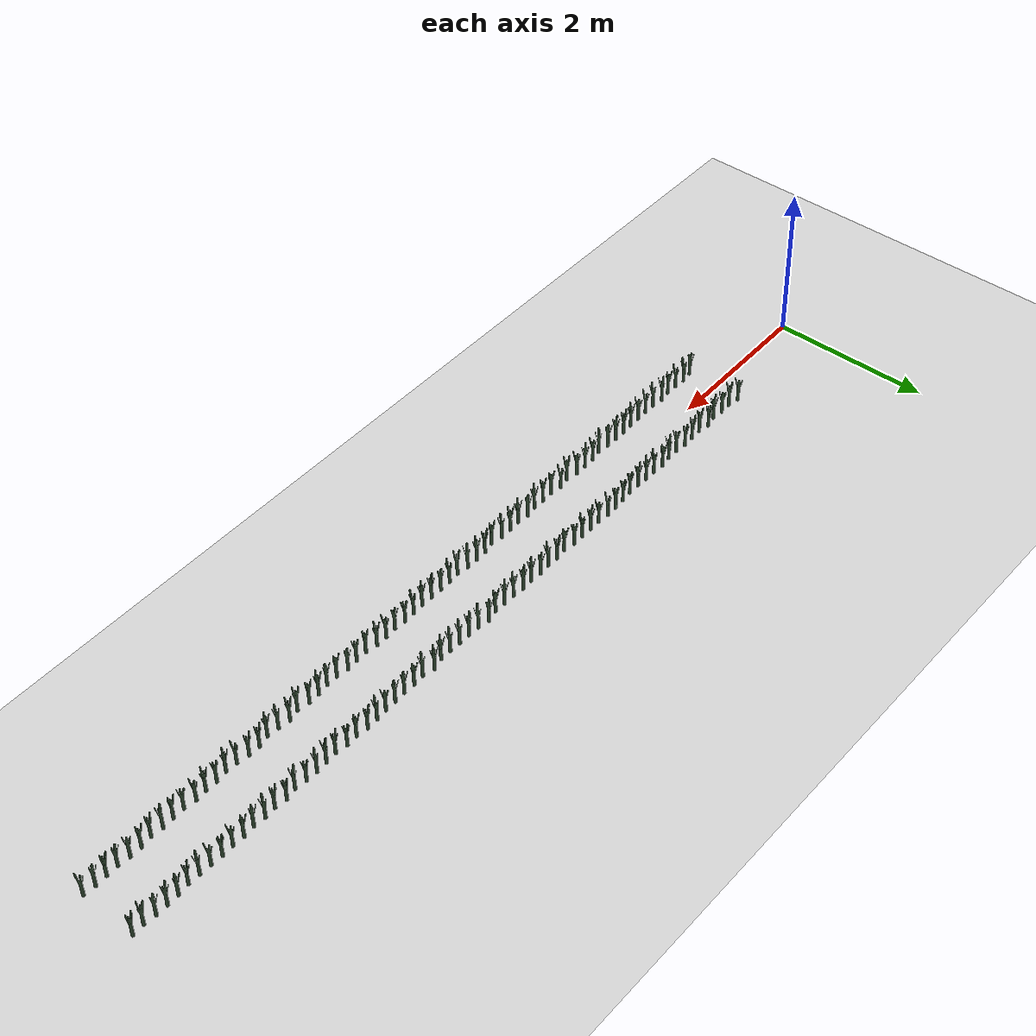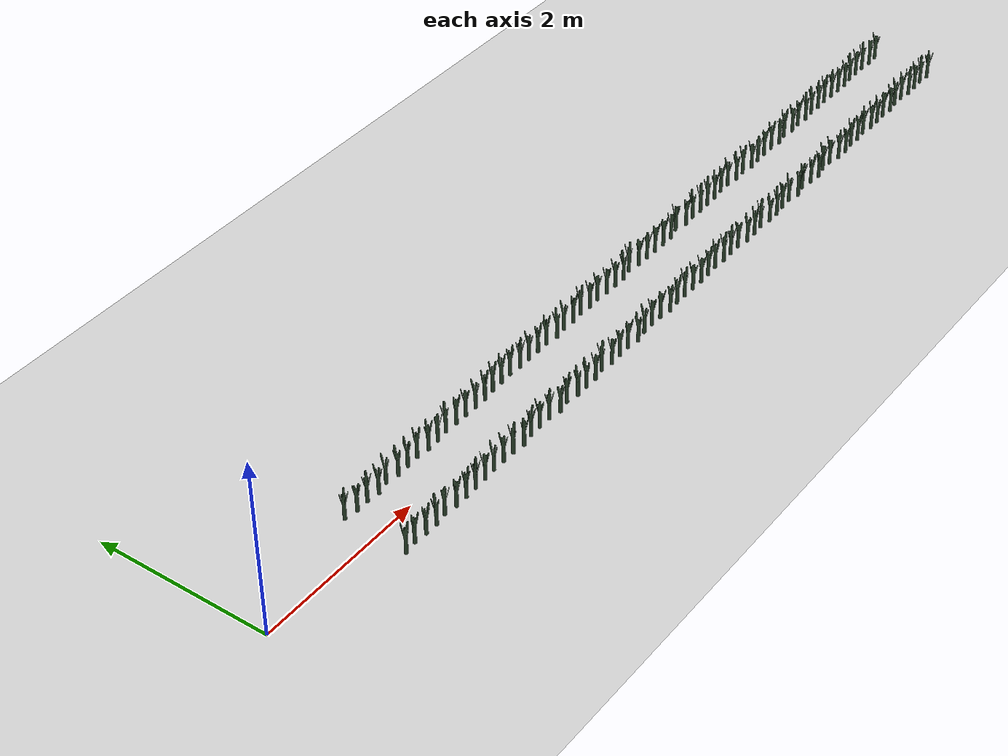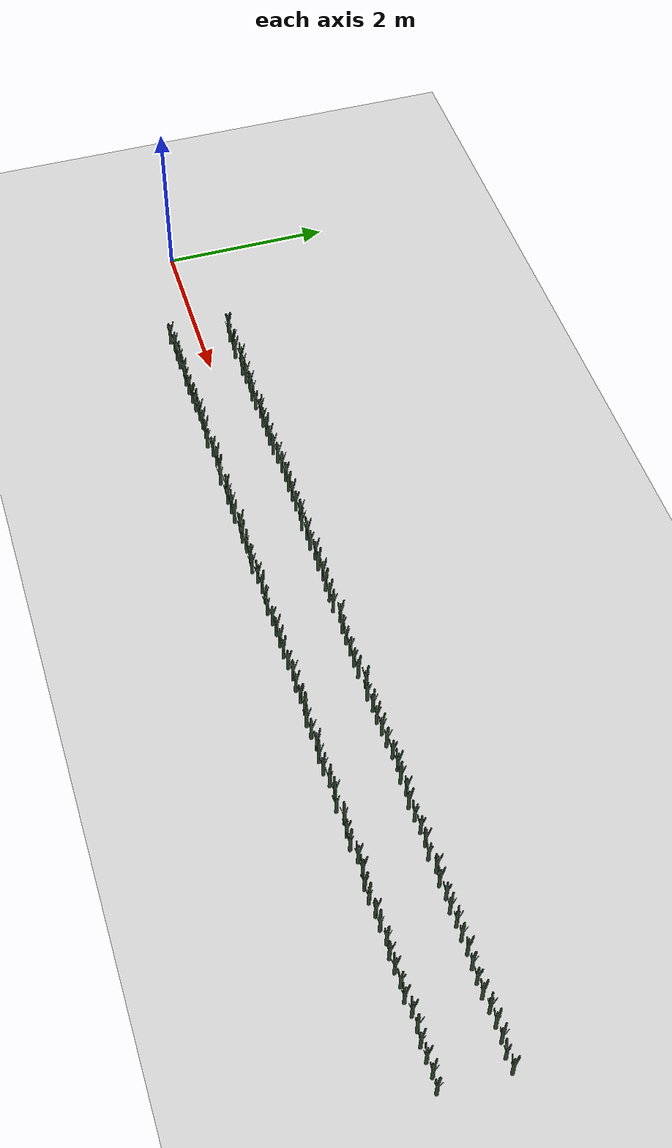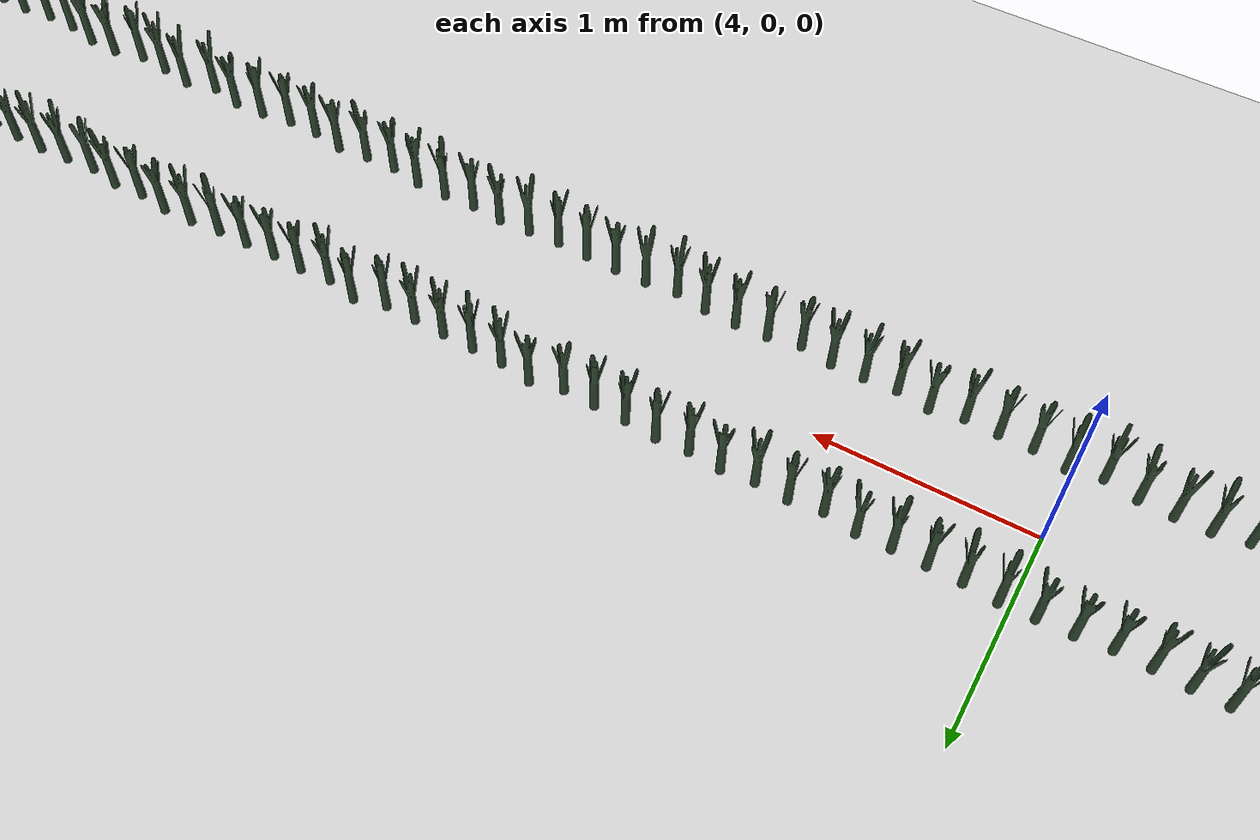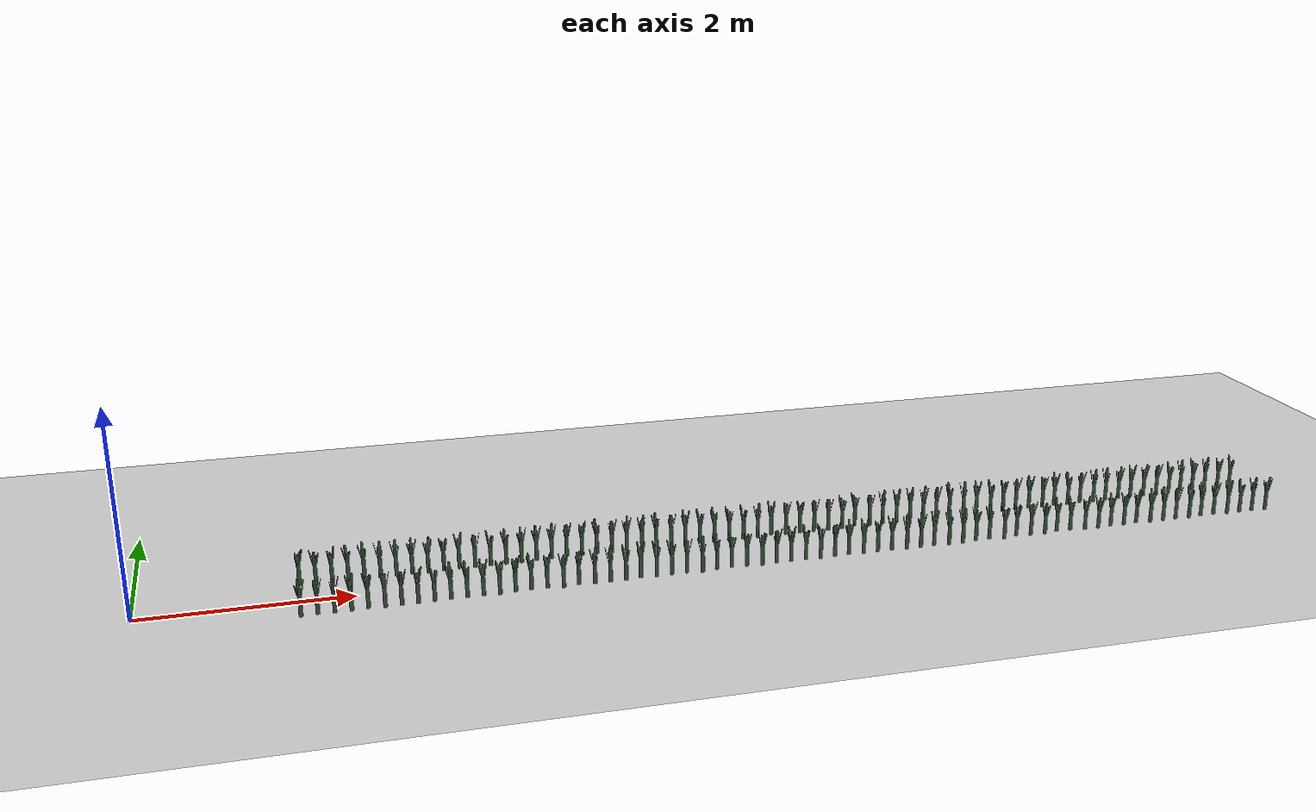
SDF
<sdf version="1.6">
 <world name="default">
  <light name="sun" type="directional">
   <pose>0 0 10 0 -0 0</pose>
   <diffuse>0.5 0.5 0.5 1</diffuse>
   <specular>0.1 0.1 0.1 1</specular>
   <attenuation>
    <range>1000</range>
    <constant>0.9</constant>
    <linear>0.01</linear>
    <quadratic>0.001</quadratic>
   </attenuation>
   <direction>0.9 0.5 -1</direction>
  </light>
  <scene><background>130 200 255 1</background><ambient>130 140 140 1</ambient></scene>
  <include><uri>model://dirt_plane</uri></include>
  <include><uri>model://Leek</uri><pose>1.500000 0.368732 0.15 0 0 168.585996</pose><static>0</static></include>
  <include><uri>model://Leek</uri><pose>1.650000 0.342659 0.15 0 0 -66.069428</pose><static>0</static></include>
  <include><uri>model://Leek</uri><pose>1.800000 0.347109 0.15 0 0 -26.015431</pose><static>0</static></include>
  <include>
   <uri>model://Leek</uri>
   <pose>1.950000 0.332051 0.15 0 0 -161.539831</pose>
   <static>0</static>
  </include>
  <include><uri>model://Leek</uri><pose>2.100000 0.367637 0.15 0 0 158.730709</pose><static>0</static></include>
  <include><uri>model://Leek</uri><pose>2.250000 0.341076 0.15 0 0 -80.318526</pose><static>0</static></include>
  <include><uri>model://Leek</uri><pose>2.400000 0.346675 0.15 0 0 -29.928428</pose><static>0</static></include>
  <include><uri>model://Leek</uri><pose>2.550000 0.354176 0.15 0 0 37.582143</pose><static>0</static></include>
  <include>
   <uri>model://Leek</uri>
   <pose>2.700000 0.334585 0.15 0 0 -138.736439</pose>
   <static>0</static>
  </include>
  <include><uri>model://Leek</uri><pose>2.850000 0.339926 0.15 0 0 -90.667920</pose><static>0</static></include>
  <include><uri>model://Leek</uri><pose>3.000000 0.359174 0.15 0 0 82.563122</pose><static>0</static></include>
  <include><uri>model://Leek</uri><pose>3.150000 0.347688 0.15 0 0 -20.809872</pose><static>0</static></include>
  <include><uri>model://Leek</uri><pose>3.300000 0.348861 0.15 0 0 -10.248396</pose><static>0</static></include>
  <include><uri>model://Leek</uri><pose>3.450000 0.342516 0.15 0 0 -67.358751</pose><static>0</static></include>
  <include><uri>model://Leek</uri><pose>3.600000 0.340911 0.15 0 0 -81.802633</pose><static>0</static></include>
  <include><uri>model://Leek</uri><pose>3.750000 0.356969 0.15 0 0 62.719596</pose><static>0</static></include>
  <include><uri>model://Leek</uri><pose>3.900000 0.362522 0.15 0 0 112.701816</pose><static>0</static></include>
  <include><uri>model://Leek</uri><pose>4.050000 0.368672 0.15 0 0 168.047725</pose><static>0</static></include>
  <include><uri>model://Leek</uri><pose>4.200000 0.355456 0.15 0 0 49.104787</pose><static>0</static></include>
  <include><uri>model://Leek</uri><pose>4.350000 0.355784 0.15 0 0 52.057637</pose><static>0</static></include>
  <include><uri>model://Leek</uri><pose>4.500000 0.353991 0.15 0 0 35.923098</pose><static>0</static></include>
  <include><uri>model://Leek</uri><pose>4.650000 0.360425 0.15 0 0 93.826454</pose><static>0</static></include>
  <include>
   <uri>model://Leek</uri>
   <pose>4.800000 0.334048 0.15 0 0 -143.564303</pose>
   <static>0</static>
  </include>
  <include><uri>model://Leek</uri><pose>4.950000 0.353668 0.15 0 0 33.007996</pose><static>0</static></include>
  <include><uri>model://Leek</uri><pose>5.100000 0.344189 0.15 0 0 -52.302265</pose><static>0</static></include>
  <include><uri>model://Leek</uri><pose>5.250000 0.359798 0.15 0 0 88.181889</pose><static>0</static></include>
  <include><uri>model://Leek</uri><pose>5.400000 0.346757 0.15 0 0 -29.183369</pose><static>0</static></include>
  <include><uri>model://Leek</uri><pose>5.550000 0.355800 0.15 0 0 52.197676</pose><static>0</static></include>
  <include><uri>model://Leek</uri><pose>5.700000 0.341191 0.15 0 0 -79.284622</pose><static>0</static></include>
  <include>
   <uri>model://Leek</uri>
   <pose>5.850000 0.338368 0.15 0 0 -104.688635</pose>
   <static>0</static>
  </include>
  <include>
   <uri>model://Leek</uri>
   <pose>6.000000 0.333366 0.15 0 0 -149.709837</pose>
   <static>0</static>
  </include>
  <include><uri>model://Leek</uri><pose>6.150000 0.368895 0.15 0 0 170.053997</pose><static>0</static></include>
  <include><uri>model://Leek</uri><pose>6.300000 0.344855 0.15 0 0 -46.306230</pose><static>0</static></include>
  <include><uri>model://Leek</uri><pose>6.450000 0.339930 0.15 0 0 -90.625760</pose><static>0</static></include>
  <include>
   <uri>model://Leek</uri>
   <pose>6.600000 0.337893 0.15 0 0 -108.963688</pose>
   <static>0</static>
  </include>
  <include>
   <uri>model://Leek</uri>
   <pose>6.750000 0.332303 0.15 0 0 -159.271482</pose>
   <static>0</static>
  </include>
  <include>
   <uri>model://Leek</uri>
   <pose>6.900000 0.330712 0.15 0 0 -173.594406</pose>
   <static>0</static>
  </include>
  <include><uri>model://Leek</uri><pose>7.050000 0.369811 0.15 0 0 178.295908</pose><static>0</static></include>
  <include>
   <uri>model://Leek</uri>
   <pose>7.200000 0.334401 0.15 0 0 -140.388918</pose>
   <static>0</static>
  </include>
  <include><uri>model://Leek</uri><pose>7.350000 0.347314 0.15 0 0 -24.178281</pose><static>0</static></include>
  <include><uri>model://Leek</uri><pose>7.500000 0.340993 0.15 0 0 -81.060630</pose><static>0</static></include>
  <include><uri>model://Leek</uri><pose>7.650000 0.346586 0.15 0 0 -30.727205</pose><static>0</static></include>
  <include><uri>model://Leek</uri><pose>7.800000 0.349224 0.15 0 0 -6.984782</pose><static>0</static></include>
  <include><uri>model://Leek</uri><pose>7.950000 0.363043 0.15 0 0 117.391396</pose><static>0</static></include>
  <include><uri>model://Leek</uri><pose>8.100000 0.368338 0.15 0 0 165.045390</pose><static>0</static></include>
  <include><uri>model://Leek</uri><pose>8.250000 0.347325 0.15 0 0 -24.072029</pose><static>0</static></include>
  <include><uri>model://Leek</uri><pose>8.400000 0.357679 0.15 0 0 69.110214</pose><static>0</static></include>
  <include>
   <uri>model://Leek</uri>
   <pose>8.550000 0.332758 0.15 0 0 -155.177595</pose>
   <static>0</static>
  </include>
  <include><uri>model://Leek</uri><pose>8.700000 0.344115 0.15 0 0 -52.968094</pose><static>0</static></include>
  <include><uri>model://Leek</uri><pose>8.850000 0.353958 0.15 0 0 35.619593</pose><static>0</static></include>
  <include><uri>model://Leek</uri><pose>9.000000 0.350680 0.15 0 0 6.118673</pose><static>0</static></include>
  <include>
   <uri>model://Leek</uri>
   <pose>9.150000 0.332965 0.15 0 0 -153.315601</pose>
   <static>0</static>
  </include>
  <include><uri>model://Leek</uri><pose>9.300000 0.361856 0.15 0 0 106.701346</pose><static>0</static></include>
  <include><uri>model://Leek</uri><pose>9.450000 0.339714 0.15 0 0 -92.578292</pose><static>0</static></include>
  <include><uri>model://Leek</uri><pose>9.600000 0.355358 0.15 0 0 48.221096</pose><static>0</static></include>
  <include><uri>model://Leek</uri><pose>9.750000 0.340316 0.15 0 0 -87.155188</pose><static>0</static></include>
  <include><uri>model://Leek</uri><pose>9.900000 0.353604 0.15 0 0 32.432056</pose><static>0</static></include>
  <include><uri>model://Leek</uri><pose>10.050000 0.349205 0.15 0 0 -7.151787</pose><static>0</static></include>
  <include><uri>model://Leek</uri><pose>10.200000 0.354903 0.15 0 0 44.130388</pose><static>0</static></include>
  <include>
   <uri>model://Leek</uri>
   <pose>10.350000 0.346392 0.15 0 0 -32.470946</pose>
   <static>0</static>
  </include>
  <include>
   <uri>model://Leek</uri>
   <pose>10.500000 0.340702 0.15 0 0 -83.678675</pose>
   <static>0</static>
  </include>
  <include>
   <uri>model://Leek</uri>
   <pose>10.650000 0.337647 0.15 0 0 -111.175731</pose>
   <static>0</static>
  </include>
  <include><uri>model://Leek</uri><pose>10.800000 0.354300 0.15 0 0 38.695641</pose><static>0</static></include>
  <include><uri>model://Leek</uri><pose>10.950000 0.358610 0.15 0 0 77.494287</pose><static>0</static></include>
  <include><uri>model://Leek</uri><pose>11.100000 0.357754 0.15 0 0 69.787347</pose><static>0</static></include>
  <include>
   <uri>model://Leek</uri>
   <pose>11.250000 0.342674 0.15 0 0 -65.935600</pose>
   <static>0</static>
  </include>
  <include><uri>model://Leek</uri><pose>11.400000 0.350197 0.15 0 0 1.774027</pose><static>0</static></include>
  <include>
   <uri>model://Leek</uri>
   <pose>1.479400 -0.367439 0.15 0 0 -156.952508</pose>
   <static>0</static>
  </include>
  <include><uri>model://Leek</uri><pose>1.629400 -0.346723 0.15 0 0 29.489977</pose><static>0</static></include>
  <include>
   <uri>model://Leek</uri>
   <pose>1.779400 -0.359958 0.15 0 0 -89.622185</pose>
   <static>0</static>
  </include>
  <include>
   <uri>model://Leek</uri>
   <pose>1.929400 -0.361756 0.15 0 0 -105.803245</pose>
   <static>0</static>
  </include>
  <include><uri>model://Leek</uri><pose>2.079400 -0.340534 0.15 0 0 85.198076</pose><static>0</static></include>
  <include>
   <uri>model://Leek</uri>
   <pose>2.229400 -0.362093 0.15 0 0 -108.839036</pose>
   <static>0</static>
  </include>
  <include>
   <uri>model://Leek</uri>
   <pose>2.379400 -0.359941 0.15 0 0 -89.466176</pose>
   <static>0</static>
  </include>
  <include>
   <uri>model://Leek</uri>
   <pose>2.529400 -0.355704 0.15 0 0 -51.333900</pose>
   <static>0</static>
  </include>
  <include>
   <uri>model://Leek</uri>
   <pose>2.679400 -0.353221 0.15 0 0 -28.987138</pose>
   <static>0</static>
  </include>
  <include><uri>model://Leek</uri><pose>2.829400 -0.343540 0.15 0 0 58.136161</pose><static>0</static></include>
  <include><uri>model://Leek</uri><pose>2.979400 -0.346299 0.15 0 0 33.309073</pose><static>0</static></include>
  <include><uri>model://Leek</uri><pose>3.129400 -0.348561 0.15 0 0 12.950589</pose><static>0</static></include>
  <include>
   <uri>model://Leek</uri>
   <pose>3.279400 -0.365627 0.15 0 0 -140.639650</pose>
   <static>0</static>
  </include>
  <include>
   <uri>model://Leek</uri>
   <pose>3.429400 -0.336883 0.15 0 0 118.053241</pose>
   <static>0</static>
  </include>
  <include>
   <uri>model://Leek</uri>
   <pose>3.579400 -0.333015 0.15 0 0 152.863565</pose>
   <static>0</static>
  </include>
  <include>
   <uri>model://Leek</uri>
   <pose>3.729400 -0.336164 0.15 0 0 124.525580</pose>
   <static>0</static>
  </include>
  <include>
   <uri>model://Leek</uri>
   <pose>3.879400 -0.365019 0.15 0 0 -135.170213</pose>
   <static>0</static>
  </include>
  <include>
   <uri>model://Leek</uri>
   <pose>4.029400 -0.334114 0.15 0 0 142.970524</pose>
   <static>0</static>
  </include>
  <include>
   <uri>model://Leek</uri>
   <pose>4.179400 -0.359649 0.15 0 0 -86.837634</pose>
   <static>0</static>
  </include>
  <include>
   <uri>model://Leek</uri>
   <pose>4.329400 -0.356842 0.15 0 0 -61.582341</pose>
   <static>0</static>
  </include>
  <include>
   <uri>model://Leek</uri>
   <pose>4.479400 -0.361616 0.15 0 0 -104.541357</pose>
   <static>0</static>
  </include>
  <include>
   <uri>model://Leek</uri>
   <pose>4.629400 -0.331798 0.15 0 0 163.819239</pose>
   <static>0</static>
  </include>
  <include>
   <uri>model://Leek</uri>
   <pose>4.779400 -0.353932 0.15 0 0 -35.389862</pose>
   <static>0</static>
  </include>
  <include><uri>model://Leek</uri><pose>4.929400 -0.344807 0.15 0 0 46.739761</pose><static>0</static></include>
  <include><uri>model://Leek</uri><pose>5.079400 -0.341862 0.15 0 0 73.241111</pose><static>0</static></include>
  <include>
   <uri>model://Leek</uri>
   <pose>5.229400 -0.366613 0.15 0 0 -149.518510</pose>
   <static>0</static>
  </include>
  <include><uri>model://Leek</uri><pose>5.379400 -0.339353 0.15 0 0 95.820799</pose><static>0</static></include>
  <include>
   <uri>model://Leek</uri>
   <pose>5.529400 -0.331577 0.15 0 0 165.802875</pose>
   <static>0</static>
  </include>
  <include>
   <uri>model://Leek</uri>
   <pose>5.679400 -0.336300 0.15 0 0 123.299332</pose>
   <static>0</static>
  </include>
  <include>
   <uri>model://Leek</uri>
   <pose>5.829400 -0.359427 0.15 0 0 -84.845205</pose>
   <static>0</static>
  </include>
  <include><uri>model://Leek</uri><pose>5.979400 -0.343914 0.15 0 0 54.772334</pose><static>0</static></include>
  <include><uri>model://Leek</uri><pose>6.129400 -0.340899 0.15 0 0 81.912069</pose><static>0</static></include>
  <include><uri>model://Leek</uri><pose>6.279400 -0.346291 0.15 0 0 33.379633</pose><static>0</static></include>
  <include>
   <uri>model://Leek</uri>
   <pose>6.429400 -0.351842 0.15 0 0 -16.574098</pose>
   <static>0</static>
  </include>
  <include><uri>model://Leek</uri><pose>6.579400 -0.342506 0.15 0 0 67.443280</pose><static>0</static></include>
  <include>
   <uri>model://Leek</uri>
   <pose>6.729400 -0.333273 0.15 0 0 150.542855</pose>
   <static>0</static>
  </include>
  <include><uri>model://Leek</uri><pose>6.879400 -0.347179 0.15 0 0 25.388269</pose><static>0</static></include>
  <include><uri>model://Leek</uri><pose>7.029400 -0.338958 0.15 0 0 99.378624</pose><static>0</static></include>
  <include>
   <uri>model://Leek</uri>
   <pose>7.179400 -0.337130 0.15 0 0 115.826173</pose>
   <static>0</static>
  </include>
  <include>
   <uri>model://Leek</uri>
   <pose>7.329400 -0.362422 0.15 0 0 -111.795502</pose>
   <static>0</static>
  </include>
  <include>
   <uri>model://Leek</uri>
   <pose>7.479400 -0.359108 0.15 0 0 -81.975443</pose>
   <static>0</static>
  </include>
  <include><uri>model://Leek</uri><pose>7.629400 -0.342968 0.15 0 0 63.291890</pose><static>0</static></include>
  <include>
   <uri>model://Leek</uri>
   <pose>7.779400 -0.368014 0.15 0 0 -162.123054</pose>
   <static>0</static>
  </include>
  <include>
   <uri>model://Leek</uri>
   <pose>7.929400 -0.368058 0.15 0 0 -162.519842</pose>
   <static>0</static>
  </include>
  <include><uri>model://Leek</uri><pose>8.079400 -0.346216 0.15 0 0 34.054223</pose><static>0</static></include>
  <include><uri>model://Leek</uri><pose>8.229400 -0.339375 0.15 0 0 95.626613</pose><static>0</static></include>
  <include>
   <uri>model://Leek</uri>
   <pose>8.379400 -0.369903 0.15 0 0 -179.123166</pose>
   <static>0</static>
  </include>
  <include>
   <uri>model://Leek</uri>
   <pose>8.529400 -0.332207 0.15 0 0 160.132574</pose>
   <static>0</static>
  </include>
  <include>
   <uri>model://Leek</uri>
   <pose>8.679400 -0.354394 0.15 0 0 -39.547216</pose>
   <static>0</static>
  </include>
  <include>
   <uri>model://Leek</uri>
   <pose>8.829400 -0.367865 0.15 0 0 -160.786364</pose>
   <static>0</static>
  </include>
  <include>
   <uri>model://Leek</uri>
   <pose>8.979400 -0.333058 0.15 0 0 152.474061</pose>
   <static>0</static>
  </include>
  <include>
   <uri>model://Leek</uri>
   <pose>9.129400 -0.334449 0.15 0 0 139.959614</pose>
   <static>0</static>
  </include>
  <include>
   <uri>model://Leek</uri>
   <pose>9.279400 -0.364797 0.15 0 0 -133.174396</pose>
   <static>0</static>
  </include>
  <include>
   <uri>model://Leek</uri>
   <pose>9.429400 -0.368560 0.15 0 0 -167.040701</pose>
   <static>0</static>
  </include>
  <include><uri>model://Leek</uri><pose>9.579400 -0.350008 0.15 0 0 -0.072233</pose><static>0</static></include>
  <include>
   <uri>model://Leek</uri>
   <pose>9.729400 -0.354569 0.15 0 0 -41.122343</pose>
   <static>0</static>
  </include>
  <include><uri>model://Leek</uri><pose>9.879400 -0.338940 0.15 0 0 99.544100</pose><static>0</static></include>
  <include>
   <uri>model://Leek</uri>
   <pose>10.029400 -0.361901 0.15 0 0 -107.109625</pose>
   <static>0</static>
  </include>
  <include>
   <uri>model://Leek</uri>
   <pose>10.179400 -0.358217 0.15 0 0 -73.951513</pose>
   <static>0</static>
  </include>
  <include><uri>model://Leek</uri><pose>10.329400 -0.349566 0.15 0 0 3.908623</pose><static>0</static></include>
  <include>
   <uri>model://Leek</uri>
   <pose>10.479400 -0.363774 0.15 0 0 -123.965376</pose>
   <static>0</static>
  </include>
  <include>
   <uri>model://Leek</uri>
   <pose>10.629400 -0.341456 0.15 0 0 76.899241</pose>
   <static>0</static>
  </include>
  <include>
   <uri>model://Leek</uri>
   <pose>10.779400 -0.341685 0.15 0 0 74.835274</pose>
   <static>0</static>
  </include>
  <include>
   <uri>model://Leek</uri>
   <pose>10.929400 -0.361123 0.15 0 0 -100.102708</pose>
   <static>0</static>
  </include>
  <include>
   <uri>model://Leek</uri>
   <pose>11.079400 -0.356800 0.15 0 0 -61.203611</pose>
   <static>0</static>
  </include>
  <include>
   <uri>model://Leek</uri>
   <pose>11.229400 -0.350630 0.15 0 0 -5.665678</pose>
   <static>0</static>
  </include>
  <include>
   <uri>model://Leek</uri>
   <pose>11.379400 -0.364084 0.15 0 0 -126.758001</pose>
   <static>0</static>
  </include>
 </world>
</sdf>

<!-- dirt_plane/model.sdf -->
<sdf version="1.4">
<model name="dirt_plane">
  <static>true</static>
    <link name="link">
      <collision name="collision">
        <geometry>
          <plane>
            <normal>0 0 1</normal>
            <size>100 100</size>
          </plane>
        </geometry>
        <surface>
          <friction>
            <ode>
              <mu>100</mu>
              <mu2>50</mu2>
            </ode>
          </friction>
        </surface>
      </collision>
      <visual name="visual">
        <cast_shadows>false</cast_shadows>
        <geometry>
          <plane>
            <normal>0 0 1</normal>
            <size>100 100</size>
          </plane>
        </geometry>
        <material>
          <script>
            <uri>model://ground_plane/materials/scripts/my_ground_plane.material</uri>
            <uri>model://ground_plane/materials/textures</uri>
            <name>my_ground_plane/Dirt</name>
          </script>
        </material>
      </visual>
    </link>
  </model>
</sdf>

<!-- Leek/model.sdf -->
<sdf version='1.6'>
  <model name='Leek'>
    <link name='link'>
      <pose frame=''>0 0 0 0 -0 0</pose>
      <inertial>
        <mass>1</mass>
        <inertia>
          <ixx>0.145833</ixx>
          <ixy>0</ixy>
          <ixz>0</ixz>
          <iyy>0.145833</iyy>
          <iyz>0</iyz>
          <izz>0.125</izz>
        </inertia>
        <pose frame=''>0 0 0 0 -0 0</pose>
      </inertial>
      <self_collide>0</self_collide>
      <kinematic>0</kinematic>
      <gravity>1</gravity>
      <visual name='visual'>
        <geometry>
          <mesh>
            <uri>model://Leek/Poireau.dae</uri>
            <scale>1 1 1</scale>
          </mesh>
        </geometry>
        <material>
          <script>
            <name>Gazebo/Grey</name>
            <uri>file://media/materials/scripts/gazebo.material</uri>
          </script>
          <ambient>0.3 0.7 0.4 0</ambient>
          <diffuse>0.2 0.3 0.2 0</diffuse>
          <specular>0 0 0 1</specular>
          <emissive>0 0 0 1</emissive>
          <shader type='vertex'>
            <normal_map>__default__</normal_map>
          </shader>
        </material>
        <pose frame=''>0 0 -0.08 0 -0 0</pose>
        <cast_shadows>1</cast_shadows>
        <transparency>0</transparency>
      </visual>
      <collision name='collision'>
        <laser_retro>0</laser_retro>
        <max_contacts>10</max_contacts>
        <pose frame=''>0 0 0 0 -0 0</pose>
        <geometry>
          <cylinder>
            <radius>0.02</radius>
            <length>0.25</length>
          </cylinder>
        </geometry>
        <surface>
          <friction>
            <ode>
              <mu>1</mu>
              <mu2>1</mu2>
              <fdir1>0 0 0</fdir1>
              <slip1>0</slip1>
              <slip2>0</slip2>
            </ode>
            <torsional>
              <coefficient>1</coefficient>
              <patch_radius>0</patch_radius>
              <surface_radius>0</surface_radius>
              <use_patch_radius>1</use_patch_radius>
              <ode>
                <slip>0</slip>
              </ode>
            </torsional>
          </friction>
          <bounce>
            <restitution_coefficient>0</restitution_coefficient>
            <threshold>1e+06</threshold>
          </bounce>
          <contact>
            <collide_without_contact>0</collide_without_contact>
            <collide_without_contact_bitmask>1</collide_without_contact_bitmask>
            <collide_bitmask>1</collide_bitmask>
            <ode>
              <soft_cfm>0</soft_cfm>
              <soft_erp>0.2</soft_erp>
              <kp>1e+13</kp>
              <kd>1</kd>
              <max_vel>0.01</max_vel>
              <min_depth>0</min_depth>
            </ode>
            <bullet>
              <split_impulse>1</split_impulse>
              <split_impulse_penetration_threshold>-0.01</split_impulse_penetration_threshold>
              <soft_cfm>0</soft_cfm>
              <soft_erp>0.2</soft_erp>
              <kp>1e+13</kp>
              <kd>1</kd>
            </bullet>
          </contact>
        </surface>
      </collision>
    </link>
    <static>0</static>
    <allow_auto_disable>1</allow_auto_disable>
  </model>
</sdf>
